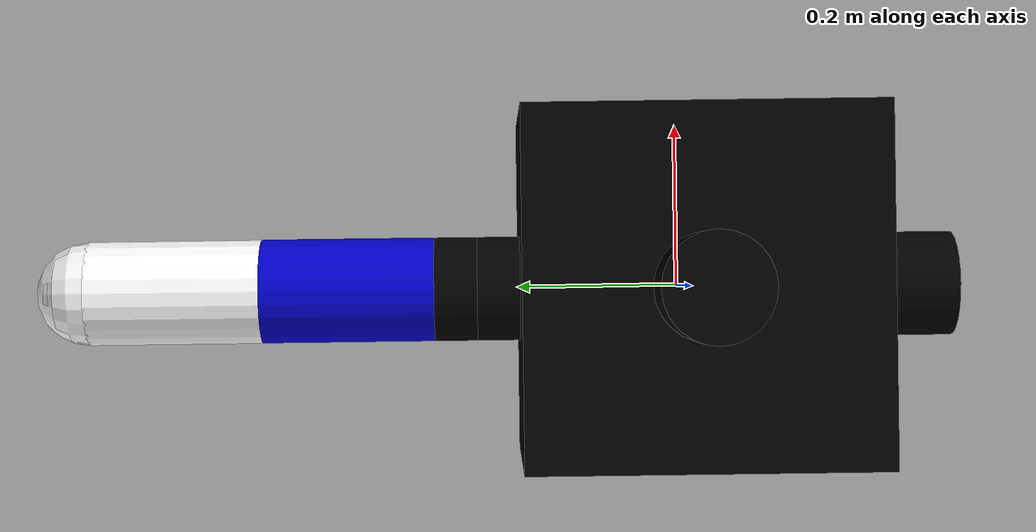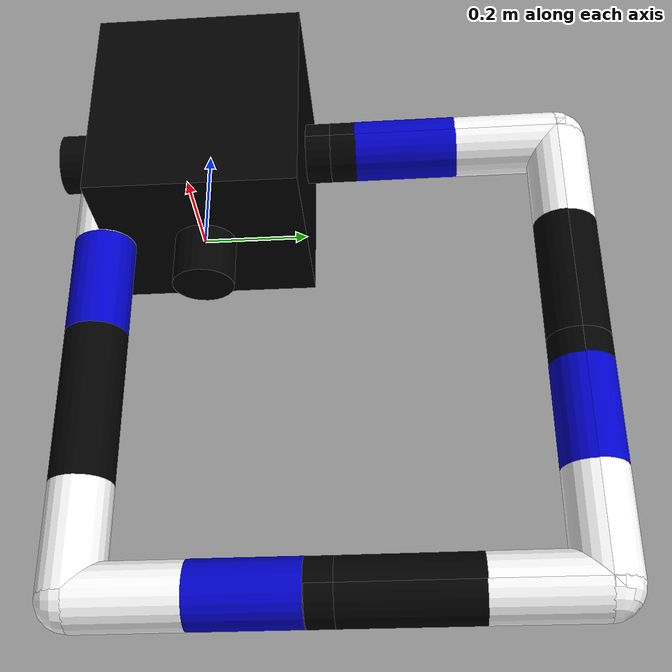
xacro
<?xml version="1.0" ?>
<robot name="ModularBot" xmlns:xacro="http://ros.org/wiki/xacro">
   <gazebo>
      <plugin filename="libGazeboXBotPlugin.so" name="gazebo_xbot_plugin">
         <path_to_config_file>configs/ADVR_shared/ModularBot/configs/config_ModularBot.yaml</path_to_config_file>
      </plugin>
   </gazebo>
   <xacro:property name="size1" value="0.05"/>
   <xacro:property name="size2" value="0.055"/>
   <xacro:property name="size3" value="0.06"/>
   <xacro:property name="len1" value="0.4"/>
   <xacro:property name="len2" value="0.6"/>
   <xacro:property name="len3" value="0.8"/>
   <xacro:property name="mass" value="0.5"/>
   <material name="blue">
      <color rgba="0 0 0.8 1"/>
   </material>
   <material name="black">
      <color rgba="0 0 0 1"/>
   </material>
   <material name="white">
      <color rgba="1 1 1 1"/>
   </material>
   <material name="grey">
      <color rgba="0.5 0.5 0.5 1"/>
   </material>
   <xacro:macro name="default_inertial" params="mass">
      <inertial>
         <mass value="${mass}"/>
         <inertia ixx="1.0" ixy="0.0" ixz="0.0" iyy="1.0" iyz="0.0" izz="1.0"/>
      </inertial>
   </xacro:macro>
   <link name="world"/>
   <joint name="world" type="fixed">
      <parent link="world"/>
      <child link="base_link"/>
   </joint>
   <link name="base_link"/>
   <xacro:macro name="add_fixed_joint" params="type name father child x y z roll pitch yaw">
      <joint name="${name}" type="fixed">
         <axis rpy="0 0 0" xyz="0 0 1"/>
         <parent link="${father}"/>
         <child link="${child}"/>
         <origin rpy="${roll} ${pitch} ${yaw}" xyz="${x} ${y} ${z}"/>
      </joint>
   </xacro:macro>
   <xacro:macro name="add_master_cube" params="name">
      <joint name="fixed" type="fixed">
         <parent link="base_link"/>
         <child link="${name}"/>
         <axis rpy="0 0 0" xyz="0 0 1"/>
         <origin rpy="0.0 0.0 0.0" xyz="0.0 0.0 0.0"/>
      </joint>
      <link name="${name}">
         <visual>
            <origin rpy="0 0 0" xyz="0 0 0.2"/>
            <geometry>
               <box size="0.4 0.4 0.4"/>
            </geometry>
            <material name="black"/>
         </visual>
         <collision>
            <origin rpy="0 0 0" xyz="0 0 0.2"/>
            <geometry>
               <box size="0.4 0.4 0.4"/>
            </geometry>
         </collision>
         <inertial>
            <mass value="2"/>
            <inertia ixx="1.0" ixy="0.0" ixz="0.0" iyy="1.0" iyz="0.0" izz="1.0"/>
         </inertial>
      </link>
      <link name="${name}_con1">
         <visual>
            <origin rpy="0 0 0" xyz="0 0 0.05"/>
            <geometry>
               <cylinder length="0.1" radius="0.06"/>
            </geometry>
            <material name="black"/>
         </visual>
         <collision>
            <geometry>
               <cylinder length="0.1" radius="0.06"/>
            </geometry>
         </collision>
         <inertial>
            <mass value="0.5"/>
            <inertia ixx="1.0" ixy="0.0" ixz="0.0" iyy="1.0" iyz="0.0" izz="1.0"/>
         </inertial>
      </link>
      <link name="${name}_con2">
         <visual>
            <origin rpy="0 0 0" xyz="0 0 0.05"/>
            <geometry>
               <cylinder length="0.1" radius="0.06"/>
            </geometry>
            <material name="black"/>
         </visual>
         <collision>
            <geometry>
               <cylinder length="0.1" radius="0.06"/>
            </geometry>
         </collision>
         <inertial>
            <mass value="0.5"/>
            <inertia ixx="1.0" ixy="0.0" ixz="0.0" iyy="1.0" iyz="0.0" izz="1.0"/>
         </inertial>
      </link>
      <link name="${name}_con3">
         <visual>
            <origin rpy="0 0 0" xyz="0 0 0.05"/>
            <geometry>
               <cylinder length="0.1" radius="0.06"/>
            </geometry>
            <material name="black"/>
         </visual>
         <collision>
            <geometry>
               <cylinder length="0.1" radius="0.06"/>
            </geometry>
         </collision>
         <inertial>
            <mass value="0.5"/>
            <inertia ixx="1.0" ixy="0.0" ixz="0.0" iyy="1.0" iyz="0.0" izz="1.0"/>
         </inertial>
      </link>
      <link name="${name}_con4">
         <visual>
            <origin rpy="0 0 0" xyz="0 0 0.05"/>
            <geometry>
               <cylinder length="0.1" radius="0.06"/>
            </geometry>
            <material name="black"/>
         </visual>
         <collision>
            <geometry>
               <cylinder length="0.1" radius="0.06"/>
            </geometry>
         </collision>
         <inertial>
            <mass value="0.5"/>
            <inertia ixx="1.0" ixy="0.0" ixz="0.0" iyy="1.0" iyz="0.0" izz="1.0"/>
         </inertial>
      </link>
      <joint name="${name}_fixed_1" type="fixed">
         <parent link="${name}"/>
         <child link="${name}_con1"/>
         <axis rpy="0 0 0" xyz="0 0 1"/>
         <origin rpy="3.14 0 0" xyz="0 0 0.0"/>
      </joint>
      <joint name="${name}_fixed_2" type="fixed">
         <parent link="${name}"/>
         <child link="${name}_con2"/>
         <axis rpy="0 0 0" xyz="0 0 1"/>
         <origin rpy="1.57 0 0" xyz="0 -0.2 0.2"/>
      </joint>
      <joint name="${name}_fixed_3" type="fixed">
         <parent link="${name}"/>
         <child link="${name}_con3"/>
         <axis rpy="0 0 0" xyz="0 0 1"/>
         <origin rpy="0 0 0" xyz="0 0 0.4"/>
      </joint>
      <joint name="${name}_fixed_4" type="fixed">
         <parent link="${name}"/>
         <child link="${name}_con4"/>
         <axis rpy="0 0 0" xyz="0 0 1"/>
         <origin rpy="-1.57 0 0" xyz="0 0.2 0.2"/>
      </joint>
   </xacro:macro>
   <xacro:macro name="add_slave_cube" params="name">
      <link name="${name}">
         <visual>
            <origin rpy="0 0 0" xyz="0 0 0.2"/>
            <geometry>
               <box size="0.4 0.4 0.4"/>
            </geometry>
            <material name="black"/>
         </visual>
         <collision>
            <geometry>
               <box size="0.4 0.4 0.4"/>
            </geometry>
         </collision>
         <inertial>
            <mass value="2"/>
            <inertia ixx="1.0" ixy="0.0" ixz="0.0" iyy="1.0" iyz="0.0" izz="1.0"/>
         </inertial>
      </link>
      <link name="${name}_con1">
         <visual>
            <origin rpy="0 0 0" xyz="0 0 0.05"/>
            <geometry>
               <cylinder length="0.1" radius="0.06"/>
            </geometry>
            <material name="black"/>
         </visual>
         <collision>
            <geometry>
               <cylinder length="0.1" radius="0.06"/>
            </geometry>
         </collision>
         <inertial>
            <mass value="0.5"/>
            <inertia ixx="1.0" ixy="0.0" ixz="0.0" iyy="1.0" iyz="0.0" izz="1.0"/>
         </inertial>
      </link>
      <link name="${name}_con2">
         <visual>
            <origin rpy="0 0 0" xyz="0 0 0.05"/>
            <geometry>
               <cylinder length="0.1" radius="0.06"/>
            </geometry>
            <material name="black"/>
         </visual>
         <collision>
            <geometry>
               <cylinder length="0.1" radius="0.06"/>
            </geometry>
         </collision>
         <inertial>
            <mass value="0.5"/>
            <inertia ixx="1.0" ixy="0.0" ixz="0.0" iyy="1.0" iyz="0.0" izz="1.0"/>
         </inertial>
      </link>
      <link name="${name}_con3">
         <visual>
            <origin rpy="0 0 0" xyz="0 0 0.05"/>
            <geometry>
               <cylinder length="0.1" radius="0.06"/>
            </geometry>
            <material name="black"/>
         </visual>
         <collision>
            <geometry>
               <cylinder length="0.1" radius="0.06"/>
            </geometry>
         </collision>
         <inertial>
            <mass value="0.5"/>
            <inertia ixx="1.0" ixy="0.0" ixz="0.0" iyy="1.0" iyz="0.0" izz="1.0"/>
         </inertial>
      </link>
      <link name="${name}_con4">
         <visual>
            <origin rpy="0 0 0" xyz="0 0 0.05"/>
            <geometry>
               <cylinder length="0.1" radius="0.06"/>
            </geometry>
            <material name="black"/>
         </visual>
         <collision>
            <geometry>
               <cylinder length="0.1" radius="0.06"/>
            </geometry>
         </collision>
         <inertial>
            <mass value="0.5"/>
            <inertia ixx="1.0" ixy="0.0" ixz="0.0" iyy="1.0" iyz="0.0" izz="1.0"/>
         </inertial>
      </link>
      <joint name="${name}_fixed_1" type="fixed">
         <parent link="${name}_con1"/>
         <child link="${name}"/>
         <axis rpy="0 0 0" xyz="0 0 1"/>
         <origin rpy="0 0 0" xyz="0 0 0.1"/>
      </joint>
      <joint name="${name}_fixed_2" type="fixed">
         <parent link="${name}"/>
         <child link="${name}_con2"/>
         <axis rpy="0 0 0" xyz="0 0 1"/>
         <origin rpy="1.57 0 0" xyz="0 -0.2 0.2"/>
      </joint>
      <joint name="${name}_fixed_3" type="fixed">
         <parent link="${name}"/>
         <child link="${name}_con3"/>
         <axis rpy="0 0 0" xyz="0 0 1"/>
         <origin rpy="0 0 0" xyz="0 0 0.4"/>
      </joint>
      <joint name="${name}_fixed_4" type="fixed">
         <parent link="${name}"/>
         <child link="${name}_con4"/>
         <axis rpy="0 0 0" xyz="0 0 1"/>
         <origin rpy="-1.57 0 0" xyz="0 0.2 0.2"/>
      </joint>
   </xacro:macro>
   <xacro:macro name="add_link" params="name type size_z size">
      <xacro:if value="${size==1}">
         <xacro:property name="radius" value="${size1}"/>
      </xacro:if>
      <xacro:unless value="${size==1}">
         <xacro:if value="${size==2}">
            <xacro:property name="radius" value="${size2}"/>
         </xacro:if>
         <xacro:unless value="${size==2}">
            <xacro:property name="radius" value="${size3}"/>
         </xacro:unless>
      </xacro:unless>
      <link name="${name}">
         <visual>
            <origin rpy="0 0 0" xyz="0 0 ${size_z/2}"/>
            <geometry>
               <cylinder length="${size_z}" radius="${radius}"/>
            </geometry>
            <material name="black"/>
         </visual>
         <collision>
            <origin rpy="0 0 0" xyz="0 0 ${size_z/2}"/>
            <geometry>
               <cylinder length="${size_z}" radius="${radius}"/>
            </geometry>
         </collision>
         <inertial>
            <origin rpy="0 0 0" xyz="0 0 ${size_z/2}"/>
            <mass value="${mass}"/>
            <inertia ixx="${mass / 12.0 * (3*radius*radius + size_z*size_z)}" ixy="0.0" ixz="0.0" iyy="${mass / 12.0 * (size_z*size_z + 3*radius*radius)}" iyz="0.0" izz="${mass / 2.0 * (radius*radius)}"/>
         </inertial>
      </link>
      <gazebo reference="${name}">
         <mu1>0.2</mu1>
         <mu2>0.2</mu2>
         <kp>1000000.0</kp>
         <kd>1.0</kd>
         <maxVel>0.0</maxVel>
         <minDepth>0.0001</minDepth>
         <material>Gazebo/White</material>
      </gazebo>
   </xacro:macro>
   <xacro:macro name="add_size_adapter" params="type name size_z size_in size_out">
      <xacro:if value="${size_in==3}">
         <xacro:property name="radius1" value="${size3}"/>
      </xacro:if>
      <xacro:unless value="${size_in==3}">
         <xacro:if value="${size_in==2}">
            <xacro:property name="radius1" value="${size2}"/>
         </xacro:if>
         <xacro:unless value="${size_in==2}">

            </xacro:unless>
      </xacro:unless>
      <xacro:if value="${size_out==3}">

        </xacro:if>
      <xacro:unless value="${size_out==3}">
         <xacro:if value="${size_out==2}">
            <xacro:property name="radius2" value="${size2}"/>
         </xacro:if>
         <xacro:unless value="${size_out==2}">
            <xacro:property name="radius2" value="${size1}"/>
         </xacro:unless>
      </xacro:unless>
      <link name="${name}">
         <visual>
            <origin rpy="0 0 0" xyz="0 0 ${size_z/4}"/>
            <geometry>
               <cylinder length="${size_z/2}" radius="${radius1}"/>
            </geometry>
            <material name="grey"/>
         </visual>
         <visual>
            <origin rpy="0 0 0" xyz="0 0 ${3*size_z/4}"/>
            <geometry>
               <cylinder length="${size_z/2}" radius="${radius2}"/>
            </geometry>
            <material name="grey"/>
         </visual>
         <collision>
            <origin rpy="0 0 0" xyz="0 0 ${size_z/4}"/>
            <geometry>
               <cylinder length="${size_z/2}" radius="${radius1}"/>
            </geometry>
         </collision>
         <collision>
            <origin rpy="0 0 0" xyz="0 0 ${3*size_z/4}"/>
            <geometry>
               <cylinder length="${size_z/2}" radius="${radius2}"/>
            </geometry>
         </collision>
         <inertial>
            <origin rpy="0 0 0" xyz="0 0 ${size_z/2}"/>
            <mass value="${mass}"/>
            <inertia ixx="${mass / 12.0 * (3*radius1*radius1 + 4*size_z/2*size_z/2) + mass / 12.0 * (3*radius2*radius2 + 4*size_z/2*size_z/2)}" ixy="0.0" ixz="0.0" iyy="${mass / 12.0 * (3*radius1*radius1 + 4*size_z/2*size_z/2) + mass / 12.0 * (3*radius2*radius2 + 4*size_z/2*size_z/2)}" iyz="0.0" izz="${mass / 4.0 * (radius1*radius1) + mass / 4.0 * (radius2*radius2)}"/>
         </inertial>
      </link>
      <gazebo reference="${name}">
         <mu1>0.2</mu1>
         <mu2>0.2</mu2>
         <kp>1000000.0</kp>
         <kd>1.0</kd>
         <maxVel>0.0</maxVel>
         <minDepth>0.0001</minDepth>
         <material>Gazebo/Grey</material>
      </gazebo>
   </xacro:macro>
   <xacro:macro name="add_elbow" params="type name size_y size_z size">
      <xacro:if value="${size==1}">
         <xacro:property name="radius" value="${size1}"/>
      </xacro:if>
      <xacro:unless value="${size==1}">
         <xacro:if value="${size==2}">
            <xacro:property name="radius" value="${size2}"/>
         </xacro:if>
         <xacro:unless value="${size==2}">
            <xacro:property name="radius" value="${size3}"/>
         </xacro:unless>
      </xacro:unless>
      <link name="${name}">
         <visual>
            <origin rpy="0 0 0" xyz="0 0 ${size_z/2}"/>
            <geometry>
               <cylinder length="${size_z}" radius="${radius}"/>
            </geometry>
            <material name="white"/>
         </visual>
         <visual>
            <origin rpy="1.57 0 0" xyz="0 ${size_y/2} ${size_z}"/>
            <geometry>
               <cylinder length="${size_y}" radius="${radius}"/>
            </geometry>
            <material name="white"/>
         </visual>
         <visual>
            <origin rpy="0 0 0" xyz="0 0 ${size_z}"/>
            <geometry>
               <sphere radius="${radius}"/>
            </geometry>
            <material name="white"/>
         </visual>
         <collision>
            <origin rpy="0 0 0" xyz="0 0 ${size_z/2}"/>
            <geometry>
               <cylinder length="${size_z}" radius="${radius}"/>
            </geometry>
         </collision>
         <inertial>
            <origin rpy="0 0 0" xyz="0 0 ${size_z/2}"/>
            <mass value="${mass}"/>
            <inertia ixx="${mass / 2 *( 1 / 12.0 * (3*radius*radius + 4*size_y*size_y) + size_z*size_z) + mass / 24.0 * (3*radius*radius + 4*size_z*size_z)}" ixy="0.0" ixz="0.0" iyy="${mass / 24.0 * (3*radius*radius + 4*size_z*size_z) + mass / 2 *( 1 / 2 *radius*radius + size_z*size_z)}" iyz="0.0" izz="${mass / 4.0 * (radius*radius) + mass / 24.0 * (3*radius*radius + 4*size_y*size_y)}"/>
         </inertial>
         <collision>
            <origin rpy="1.57 0 0" xyz="0 ${size_y/2} ${size_z}"/>
            <geometry>
               <cylinder length="${size_y}" radius="${radius}"/>
            </geometry>
         </collision>
         <collision>
            <origin rpy="0 0 0" xyz="0 0 ${size_z}"/>
            <geometry>
               <sphere radius="${radius}"/>
            </geometry>
         </collision>
      </link>
      <gazebo reference="${name}">
         <mu1>0.2</mu1>
         <mu2>0.2</mu2>
         <kp>1000000.0</kp>
         <kd>1.0</kd>
         <maxVel>0.0</maxVel>
         <minDepth>0.0001</minDepth>
         <material>Gazebo/White</material>
      </gazebo>
   </xacro:macro>
   <xacro:macro name="add_joint" params="type name father child x y z roll pitch yaw upper_lim lower_lim effort velocity">
      <joint name="${name}" type="revolute">
         <axis rpy="0 0 0" xyz="0 0 1"/>
         <parent link="${father}"/>
         <child link="${child}"/>
         <origin rpy="${roll} ${pitch} ${yaw}" xyz="${x} ${y} ${z}"/>
         <limit effort="${effort}" lower="${lower_lim}" upper="${upper_lim}" velocity="${velocity}"/>
      </joint>
      <link name="${child}">
         <inertial>
            <origin rpy="0 0 0" xyz="0 0 -0.0635"/>
            <mass value="${mass}"/>
            <inertia ixx="${mass / 3.0 * (0.127*0.127)}" ixy="0.0" ixz="0.0" iyy="${mass / 3.0 * (0.127*0.127)}" iyz="0.0" izz="0.0000148"/>
         </inertial>
      </link>
   </xacro:macro>
   <xacro:macro name="add_joint_stator" params="type name size_y size_z size">
      <xacro:if value="${size==1}">
         <xacro:property name="radius" value="${size1}"/>
      </xacro:if>
      <xacro:unless value="${size==1}">
         <xacro:if value="${size==2}">
            <xacro:property name="radius" value="${size2}"/>
         </xacro:if>
         <xacro:unless value="${size==2}">
            <xacro:property name="radius" value="${size3}"/>
         </xacro:unless>
      </xacro:unless>
      <xacro:if value="${size_y==0}">
         <link name="${name}">
            <visual>
               <origin rpy="0 0 0" xyz="0 0 ${size_z/2}"/>
               <geometry>
                  <cylinder length="${size_z}" radius="${radius}"/>
               </geometry>
               <material name="blue"/>
            </visual>
            <collision>
               <origin rpy="0 0 0" xyz="0 0 ${size_z/2}"/>
               <geometry>
                  <cylinder length="${size_z}" radius="${radius}"/>
               </geometry>
            </collision>
            <inertial>
               <origin rpy="0 0 0" xyz="0 0 ${size_z/2}"/>
               <mass value="${mass}"/>
               <inertia ixx="${mass / 12.0 * (3*radius*radius + size_z*size_z)}" ixy="0.0" ixz="0.0" iyy="${mass / 12.0 * (size_z*size_z + 3*radius*radius)}" iyz="0.0" izz="${mass / 2.0 * (radius*radius)}"/>
            </inertial>
         </link>
      </xacro:if>
      <xacro:unless value="${size_y==0}">
         <link name="${name}">
            <visual>
               <origin rpy="3.14 0 -1.57" xyz="0 0 0"/>
               <geometry>
                  <mesh filename="package://modular/meshes/asm0001.stl" scale="0.001 0.001 0.001"/>
               </geometry>
            </visual>
            <collision>
               <origin rpy="3.14 0 -1.57" xyz="0 0 0"/>
               <geometry>
                  <mesh filename="package://modular/meshes/asm0001.stl" scale="0.001 0.001 0.001"/>
               </geometry>
            </collision>
            <inertial>
               <origin rpy="0 0 0" xyz="0 0 ${size_z/2}"/>
               <mass value="${mass}"/>
               <inertia ixx="${mass / 2 *( 1 / 12.0 * (3*radius*radius + 4*size_y*size_y) + size_z*size_z) + mass / 24.0 * (3*radius*radius + 4*size_z*size_z)}" ixy="0.0" ixz="0.0" iyy="${mass / 24.0 * (3*radius*radius + 4*size_z*size_z) + mass / 2 *( 1 / 2 *radius*radius + size_z*size_z)}" iyz="0.0" izz="${mass / 4.0 * (radius*radius) + mass / 24.0 * (3*radius*radius + 4*size_y*size_y)}"/>
            </inertial>
         </link>
      </xacro:unless>
      <gazebo reference="${name}">
         <mu1>0.2</mu1>
         <mu2>0.2</mu2>
         <kp>1000000.0</kp>
         <kd>1.0</kd>
         <maxVel>0.0</maxVel>
         <minDepth>0.0001</minDepth>
         <material>Gazebo/Blue</material>
      </gazebo>
   </xacro:macro>
   <xacro:macro name="add_fixed_joint_stator" params="type name father child x y z roll pitch yaw">
      <joint name="${name}" type="fixed">
         <axis rpy="0 0 0" xyz="0 0 1"/>
         <parent link="${father}"/>
         <child link="${child}"/>
         <origin rpy="${roll} ${pitch} ${yaw}" xyz="${x} ${y} ${z}"/>
      </joint>
   </xacro:macro>
   <xacro:add_master_cube name="L_0a"/>
   <xacro:add_fixed_joint_stator child="J1_A_stator" father="L_0a_con4" name="fixed_J1_A" pitch="-0.0" roll="0.0" type="fixed_joint_stator" x="0.0" y="0.0" yaw="0.0" z="0.1"/>
   <xacro:add_joint_stator name="J1_A_stator" size="3" size_y="0.0" size_z="0.2" type="joint_stator"/>
   <xacro:add_joint child="L_1_A" effort="235" father="J1_A_stator" lower_lim="-3.14" name="J1_A" pitch="-0.0" roll="0.0" type="joint" upper_lim="3.14" velocity="5.7" x="0.0" y="0.0" yaw="0.0" z="0.2"/>
   <xacro:add_elbow name="L_1_elbow_1_A" size="3" size_y="0.2" size_z="0.2" type="elbow"/>
   <xacro:add_fixed_joint child="L_1_elbow_1_A" father="L_1_A" name="L_1_fixed_joint_1_A" pitch="-0.0" roll="0.0" type="fixed_joint" x="0.0" y="0.0" yaw="0.0" z="0.0"/>
   <xacro:add_link name="L_1_link_2_A" size="3" size_z="0.3" type="link"/>
   <xacro:add_fixed_joint child="L_1_link_2_A" father="L_1_elbow_1_A" name="L_1_fixed_joint_2_A" pitch="-0.0" roll="-1.57" type="fixed_joint" x="0.0" y="0.199999936586" yaw="0.0" z="0.200159265342"/>
   <xacro:add_fixed_joint_stator child="J2_A_stator" father="L_1_link_2_A" name="fixed_J2_A" pitch="-0.0" roll="0.0" type="fixed_joint_stator" x="0.0" y="0.0" yaw="0.0" z="0.3"/>
   <xacro:add_joint_stator name="J2_A_stator" size="3" size_y="0.0" size_z="0.2" type="joint_stator"/>
   <xacro:add_joint child="L_2_A" effort="235" father="J2_A_stator" lower_lim="-3.14" name="J2_A" pitch="-0.0" roll="0.0" type="joint" upper_lim="3.14" velocity="5.7" x="0.0" y="0.0" yaw="0.0" z="0.2"/>
   <xacro:add_elbow name="L_2_elbow_1_A" size="3" size_y="0.2" size_z="0.2" type="elbow"/>
   <xacro:add_fixed_joint child="L_2_elbow_1_A" father="L_2_A" name="L_2_fixed_joint_1_A" pitch="-0.0" roll="0.0" type="fixed_joint" x="0.0" y="0.0" yaw="0.0" z="0.0"/>
   <xacro:add_link name="L_2_link_2_A" size="3" size_z="0.3" type="link"/>
   <xacro:add_fixed_joint child="L_2_link_2_A" father="L_2_elbow_1_A" name="L_2_fixed_joint_2_A" pitch="-0.0" roll="-1.57" type="fixed_joint" x="0.0" y="0.199999936586" yaw="0.0" z="0.200159265342"/>
   <xacro:add_fixed_joint_stator child="J3_A_stator" father="L_2_link_2_A" name="fixed_J3_A" pitch="-0.0" roll="0.0" type="fixed_joint_stator" x="0.0" y="0.0" yaw="0.0" z="0.3"/>
   <xacro:add_joint_stator name="J3_A_stator" size="3" size_y="0.0" size_z="0.2" type="joint_stator"/>
   <xacro:add_joint child="L_3_A" effort="235" father="J3_A_stator" lower_lim="-3.14" name="J3_A" pitch="-0.0" roll="0.0" type="joint" upper_lim="3.14" velocity="5.7" x="0.0" y="0.0" yaw="0.0" z="0.2"/>
   <xacro:add_elbow name="L_3_elbow_1_A" size="3" size_y="0.2" size_z="0.2" type="elbow"/>
   <xacro:add_fixed_joint child="L_3_elbow_1_A" father="L_3_A" name="L_3_fixed_joint_1_A" pitch="-0.0" roll="0.0" type="fixed_joint" x="0.0" y="0.0" yaw="0.0" z="0.0"/>
   <xacro:add_link name="L_3_link_2_A" size="3" size_z="0.3" type="link"/>
   <xacro:add_fixed_joint child="L_3_link_2_A" father="L_3_elbow_1_A" name="L_3_fixed_joint_2_A" pitch="-0.0" roll="-1.57" type="fixed_joint" x="0.0" y="0.199999936586" yaw="0.0" z="0.200159265342"/>
   <xacro:add_fixed_joint_stator child="J4_A_stator" father="L_3_link_2_A" name="fixed_J4_A" pitch="-0.0" roll="0.0" type="fixed_joint_stator" x="0.0" y="0.0" yaw="0.0" z="0.3"/>
   <xacro:add_joint_stator name="J4_A_stator" size="3" size_y="0.0" size_z="0.2" type="joint_stator"/>
   <xacro:add_joint child="L_4_A" effort="235" father="J4_A_stator" lower_lim="-3.14" name="J4_A" pitch="-0.0" roll="0.0" type="joint" upper_lim="3.14" velocity="5.7" x="0.0" y="0.0" yaw="0.0" z="0.2"/>
   <xacro:add_elbow name="L_4_elbow_1_A" size="3" size_y="0.2" size_z="0.2" type="elbow"/>
   <xacro:add_fixed_joint child="L_4_elbow_1_A" father="L_4_A" name="L_4_fixed_joint_1_A" pitch="-0.0" roll="0.0" type="fixed_joint" x="0.0" y="0.0" yaw="0.0" z="0.0"/>
   <xacro:add_link name="L_4_link_2_A" size="3" size_z="0.3" type="link"/>
   <xacro:add_fixed_joint child="L_4_link_2_A" father="L_4_elbow_1_A" name="L_4_fixed_joint_2_A" pitch="-0.0" roll="-1.57" type="fixed_joint" x="0.0" y="0.199999936586" yaw="0.0" z="0.200159265342"/>
   <xacro:add_fixed_joint_stator child="J5_A_stator" father="L_4_link_2_A" name="fixed_J5_A" pitch="-0.0" roll="0.0" type="fixed_joint_stator" x="0.0" y="0.0" yaw="0.0" z="0.3"/>
   <xacro:add_joint_stator name="J5_A_stator" size="3" size_y="0.0" size_z="0.2" type="joint_stator"/>
   <xacro:add_joint child="L_5_A" effort="235" father="J5_A_stator" lower_lim="-3.14" name="J5_A" pitch="-0.0" roll="0.0" type="joint" upper_lim="3.14" velocity="5.7" x="0.0" y="0.0" yaw="0.0" z="0.2"/>
   <xacro:add_elbow name="L_5_elbow_1_A" size="3" size_y="0.2" size_z="0.2" type="elbow"/>
   <xacro:add_fixed_joint child="L_5_elbow_1_A" father="L_5_A" name="L_5_fixed_joint_1_A" pitch="-0.0" roll="0.0" type="fixed_joint" x="0.0" y="0.0" yaw="0.0" z="0.0"/>
   <xacro:add_link name="L_5_link_2_A" size="3" size_z="0.3" type="link"/>
   <xacro:add_fixed_joint child="L_5_link_2_A" father="L_5_elbow_1_A" name="L_5_fixed_joint_2_A" pitch="-0.0" roll="-1.57" type="fixed_joint" x="0.0" y="0.199999936586" yaw="0.0" z="0.200159265342"/>
   <xacro:add_fixed_joint_stator child="J6_A_stator" father="L_5_link_2_A" name="fixed_J6_A" pitch="-0.0" roll="0.0" type="fixed_joint_stator" x="0.0" y="0.0" yaw="0.0" z="0.3"/>
   <xacro:add_joint_stator name="J6_A_stator" size="3" size_y="0.0" size_z="0.2" type="joint_stator"/>
   <xacro:add_joint child="L_6_A" effort="235" father="J6_A_stator" lower_lim="-3.14" name="J6_A" pitch="-0.0" roll="0.0" type="joint" upper_lim="3.14" velocity="5.7" x="0.0" y="0.0" yaw="0.0" z="0.2"/>
   <xacro:add_elbow name="L_6_elbow_1_A" size="3" size_y="0.2" size_z="0.2" type="elbow"/>
   <xacro:add_fixed_joint child="L_6_elbow_1_A" father="L_6_A" name="L_6_fixed_joint_1_A" pitch="-0.0" roll="0.0" type="fixed_joint" x="0.0" y="0.0" yaw="0.0" z="0.0"/>
   <xacro:add_link name="L_6_link_2_A" size="3" size_z="0.3" type="link"/>
   <xacro:add_fixed_joint child="L_6_link_2_A" father="L_6_elbow_1_A" name="L_6_fixed_joint_2_A" pitch="-0.0" roll="-1.57" type="fixed_joint" x="0.0" y="0.199999936586" yaw="0.0" z="0.200159265342"/>
</robot>
